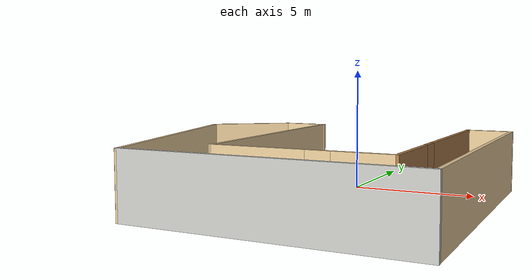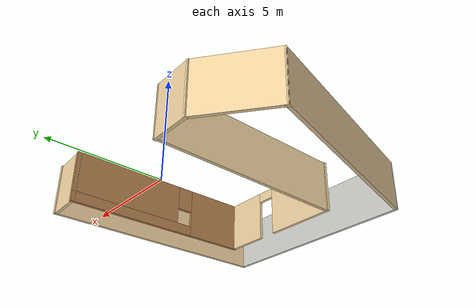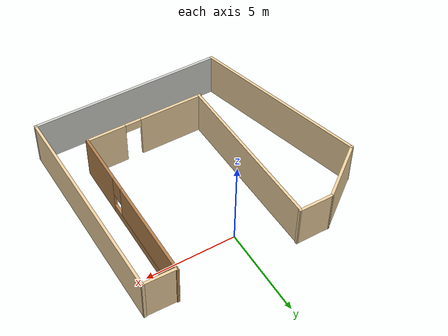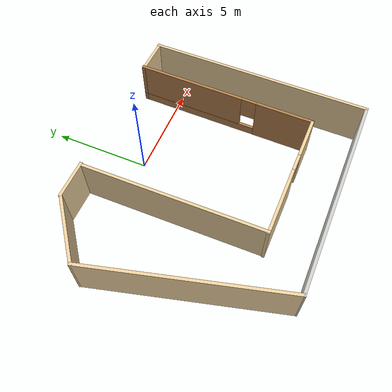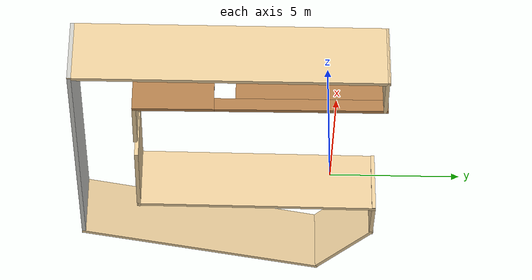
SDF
<?xml version='1.0'?>
<sdf version='1.6'>
  <model name='mybuidling'>
    <pose frame=''>-0.516955 -3.92747 0 0 -0 0</pose>
    <link name='Wall_0'>
      <collision name='Wall_0_Collision'>
        <geometry>
          <box>
            <size>2 0.15 2.5</size>
          </box>
        </geometry>
        <pose frame=''>0 0 1.25 0 -0 0</pose>
      </collision>
      <visual name='Wall_0_Visual'>
        <pose frame=''>0 0 1.25 0 -0 0</pose>
        <geometry>
          <box>
            <size>2 0.15 2.5</size>
          </box>
        </geometry>
        <material>
          <script>
            <uri>file://media/materials/scripts/gazebo.material</uri>
            <name>Gazebo/Grey</name>
          </script>
          <ambient>0.921569 0.807843 0.615686 1</ambient>
        </material>
        <meta>
          <layer>0</layer>
        </meta>
      </visual>
      <pose frame=''>-2.86147 5.81076 0 0 -0 0</pose>
    </link>
    <link name='Wall_12'>
      <collision name='Wall_12_Collision'>
        <geometry>
          <box>
            <size>10.75 0.15 2.5</size>
          </box>
        </geometry>
        <pose frame=''>0 0 1.25 0 -0 0</pose>
      </collision>
      <visual name='Wall_12_Visual'>
        <pose frame=''>0 0 1.25 0 -0 0</pose>
        <geometry>
          <box>
            <size>10.75 0.15 2.5</size>
          </box>
        </geometry>
        <material>
          <script>
            <uri>file://media/materials/scripts/gazebo.material</uri>
            <name>Gazebo/CeilingTiled</name>
          </script>
          <ambient>0.921569 0.807843 0.615686 1</ambient>
        </material>
        <meta>
          <layer>0</layer>
        </meta>
      </visual>
      <pose frame=''>1.28901 -5.82404 0 0 -0 3.14159</pose>
    </link>
    <link name='Wall_13'>
      <collision name='Wall_13_Collision'>
        <geometry>
          <box>
            <size>10 0.15 2.5</size>
          </box>
        </geometry>
        <pose frame=''>0 0 1.25 0 -0 0</pose>
      </collision>
      <visual name='Wall_13_Visual'>
        <pose frame=''>0 0 1.25 0 -0 0</pose>
        <geometry>
          <box>
            <size>10 0.15 2.5</size>
          </box>
        </geometry>
        <material>
          <script>
            <uri>file://media/materials/scripts/gazebo.material</uri>
            <name>Gazebo/Grey</name>
          </script>
          <ambient>0.921569 0.807843 0.615686 1</ambient>
        </material>
        <meta>
          <layer>0</layer>
        </meta>
      </visual>
      <pose frame=''>-5.28567 -1.06685 0 0 -0 1.8326</pose>
    </link>
    <link name='Wall_14'>
      <collision name='Wall_14_Collision'>
        <geometry>
          <box>
            <size>3.64151 0.15 2.5</size>
          </box>
        </geometry>
        <pose frame=''>0 0 1.25 0 -0 0</pose>
      </collision>
      <visual name='Wall_14_Visual'>
        <pose frame=''>0 0 1.25 0 -0 0</pose>
        <geometry>
          <box>
            <size>3.64151 0.15 2.5</size>
          </box>
        </geometry>
        <material>
          <script>
            <uri>file://media/materials/scripts/gazebo.material</uri>
            <name>Gazebo/Grey</name>
          </script>
          <ambient>0.921569 0.807843 0.615686 1</ambient>
        </material>
        <meta>
          <layer>0</layer>
        </meta>
      </visual>
      <pose frame=''>-5.17341 4.75055 0 0 -0 0.65267</pose>
    </link>
    <link name='Wall_3'>
      <collision name='Wall_3_Collision'>
        <geometry>
          <box>
            <size>9.50035 0.15 2.5</size>
          </box>
        </geometry>
        <pose frame=''>0 0 1.25 0 -0 0</pose>
      </collision>
      <visual name='Wall_3_Visual'>
        <pose frame=''>0 0 1.25 0 -0 0</pose>
        <geometry>
          <box>
            <size>9.50035 0.15 2.5</size>
          </box>
        </geometry>
        <material>
          <script>
            <uri>file://media/materials/scripts/gazebo.material</uri>
            <name>Gazebo/Grey</name>
          </script>
          <ambient>0.921569 0.807843 0.615686 1</ambient>
        </material>
        <meta>
          <layer>0</layer>
        </meta>
      </visual>
      <pose frame=''>-1.91613 1.13576 0 0 0 -1.55774</pose>
    </link>
    <link name='Wall_4'>
      <pose frame=''>1.40421 -3.53924 0 0 -0 0</pose>
      <visual name='Wall_4_Visual_0'>
        <pose frame=''>-1.54926 0 1.25 0 -0 0</pose>
        <geometry>
          <box>
            <size>3.65148 0.15 2.5</size>
          </box>
        </geometry>
        <material>
          <script>
            <uri>file://media/materials/scripts/gazebo.material</uri>
            <name>Gazebo/Grey</name>
          </script>
          <ambient>0.921569 0.807843 0.615686 1</ambient>
        </material>
        <meta>
          <layer>0</layer>
        </meta>
      </visual>
      <collision name='Wall_4_Collision_0'>
        <geometry>
          <box>
            <size>3.65148 0.15 2.5</size>
          </box>
        </geometry>
        <pose frame=''>-1.54926 0 1.25 0 -0 0</pose>
      </collision>
      <visual name='Wall_4_Visual_1'>
        <pose frame=''>2.27574 0 1.25 0 -0 0</pose>
        <geometry>
          <box>
            <size>2.19853 0.15 2.5</size>
          </box>
        </geometry>
        <material>
          <script>
            <uri>file://media/materials/scripts/gazebo.material</uri>
            <name>Gazebo/Grey</name>
          </script>
          <ambient>0.921569 0.807843 0.615686 1</ambient>
        </material>
        <meta>
          <layer>0</layer>
        </meta>
      </visual>
      <collision name='Wall_4_Collision_1'>
        <geometry>
          <box>
            <size>2.19853 0.15 2.5</size>
          </box>
        </geometry>
        <pose frame=''>2.27574 0 1.25 0 -0 0</pose>
      </collision>
      <visual name='Wall_4_Visual_2'>
        <pose frame=''>0.726475 0 2.25 0 -0 0</pose>
        <geometry>
          <box>
            <size>0.9 0.15 0.5</size>
          </box>
        </geometry>
        <material>
          <script>
            <uri>file://media/materials/scripts/gazebo.material</uri>
            <name>Gazebo/Grey</name>
          </script>
          <ambient>0.921569 0.807843 0.615686 1</ambient>
        </material>
        <meta>
          <layer>0</layer>
        </meta>
      </visual>
      <collision name='Wall_4_Collision_2'>
        <geometry>
          <box>
            <size>0.9 0.15 0.5</size>
          </box>
        </geometry>
        <pose frame=''>0.726475 0 2.25 0 -0 0</pose>
      </collision>
    </link>
    <link name='Wall_5'>
      <pose frame=''>4.78559 1.1387 0 0 -0 1.5621</pose>
      <visual name='Wall_5_Visual_0'>
        <pose frame=''>-3.23151 0 1.25 0 -0 0</pose>
        <geometry>
          <box>
            <size>3.04366 0.15 2.5</size>
          </box>
        </geometry>
        <material>
          <script>
            <uri>file://media/materials/scripts/gazebo.material</uri>
            <name>Gazebo/Wood</name>
          </script>
          <ambient>0.921569 0.807843 0.615686 1</ambient>
        </material>
        <meta>
          <layer>0</layer>
        </meta>
      </visual>
      <collision name='Wall_5_Collision_0'>
        <geometry>
          <box>
            <size>3.04366 0.15 2.5</size>
          </box>
        </geometry>
        <pose frame=''>-3.23151 0 1.25 0 -0 0</pose>
      </collision>
      <visual name='Wall_5_Visual_1'>
        <pose frame=''>1.52183 0 0.25 0 -0 0</pose>
        <geometry>
          <box>
            <size>6.46303 0.15 0.5</size>
          </box>
        </geometry>
        <material>
          <script>
            <uri>file://media/materials/scripts/gazebo.material</uri>
            <name>Gazebo/Wood</name>
          </script>
          <ambient>0.921569 0.807843 0.615686 1</ambient>
        </material>
        <meta>
          <layer>0</layer>
        </meta>
      </visual>
      <collision name='Wall_5_Collision_1'>
        <geometry>
          <box>
            <size>6.46303 0.15 0.5</size>
          </box>
        </geometry>
        <pose frame=''>1.52183 0 0.25 0 -0 0</pose>
      </collision>
      <visual name='Wall_5_Visual_2'>
        <pose frame=''>1.92183 0 1.5 0 -0 0</pose>
        <geometry>
          <box>
            <size>5.66303 0.15 2</size>
          </box>
        </geometry>
        <material>
          <script>
            <uri>file://media/materials/scripts/gazebo.material</uri>
            <name>Gazebo/Wood</name>
          </script>
          <ambient>0.921569 0.807843 0.615686 1</ambient>
        </material>
        <meta>
          <layer>0</layer>
        </meta>
      </visual>
      <collision name='Wall_5_Collision_2'>
        <geometry>
          <box>
            <size>5.66303 0.15 2</size>
          </box>
        </geometry>
        <pose frame=''>1.92183 0 1.5 0 -0 0</pose>
      </collision>
      <visual name='Wall_5_Visual_3'>
        <pose frame=''>-1.30968 0 1.9 0 -0 0</pose>
        <geometry>
          <box>
            <size>0.8 0.15 1.2</size>
          </box>
        </geometry>
        <material>
          <script>
            <uri>file://media/materials/scripts/gazebo.material</uri>
            <name>Gazebo/Wood</name>
          </script>
          <ambient>0.921569 0.807843 0.615686 1</ambient>
        </material>
        <meta>
          <layer>0</layer>
        </meta>
      </visual>
      <collision name='Wall_5_Collision_3'>
        <geometry>
          <box>
            <size>0.8 0.15 1.2</size>
          </box>
        </geometry>
        <pose frame=''>-1.30968 0 1.9 0 -0 0</pose>
      </collision>
    </link>
    <link name='Wall_6'>
      <collision name='Wall_6_Collision'>
        <geometry>
          <box>
            <size>1.91274 0.15 2.5</size>
          </box>
        </geometry>
        <pose frame=''>0 0 1.25 0 -0 0</pose>
      </collision>
      <visual name='Wall_6_Visual'>
        <pose frame=''>0 0 1.25 0 -0 0</pose>
        <geometry>
          <box>
            <size>1.91274 0.15 2.5</size>
          </box>
        </geometry>
        <material>
          <script>
            <uri>file://media/materials/scripts/gazebo.material</uri>
            <name>Gazebo/Grey</name>
          </script>
          <ambient>0.921569 0.807843 0.615686 1</ambient>
        </material>
        <meta>
          <layer>0</layer>
        </meta>
      </visual>
      <pose frame=''>5.70764 5.75562 0 0 0 -0.023077</pose>
    </link>
    <link name='Wall_7'>
      <collision name='Wall_7_Collision'>
        <geometry>
          <box>
            <size>11.75 0.15 2.5</size>
          </box>
        </geometry>
        <pose frame=''>0 0 1.25 0 -0 0</pose>
      </collision>
      <visual name='Wall_7_Visual'>
        <pose frame=''>0 0 1.25 0 -0 0</pose>
        <geometry>
          <box>
            <size>11.75 0.15 2.5</size>
          </box>
        </geometry>
        <material>
          <script>
            <uri>file://media/materials/scripts/gazebo.material</uri>
            <name>Gazebo/Grey</name>
          </script>
          <ambient>0.921569 0.807843 0.615686 1</ambient>
        </material>
        <meta>
          <layer>0</layer>
        </meta>
      </visual>
      <pose frame=''>6.58901 -0.024038 0 0 0 -1.5708</pose>
    </link>
    <static>1</static>
  </model>
</sdf>
